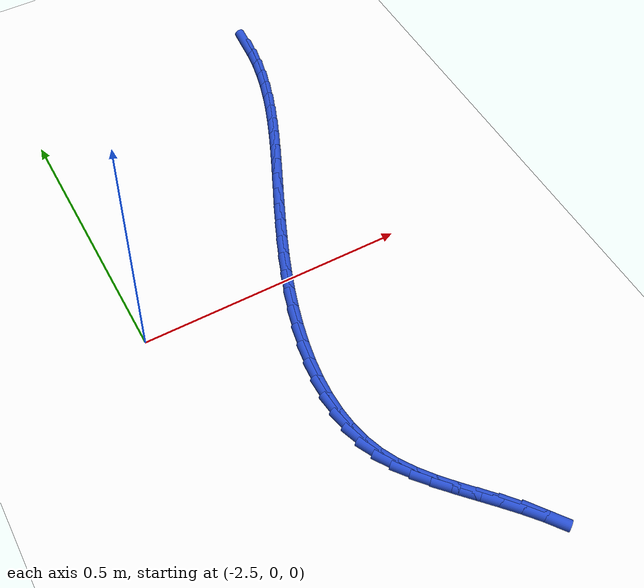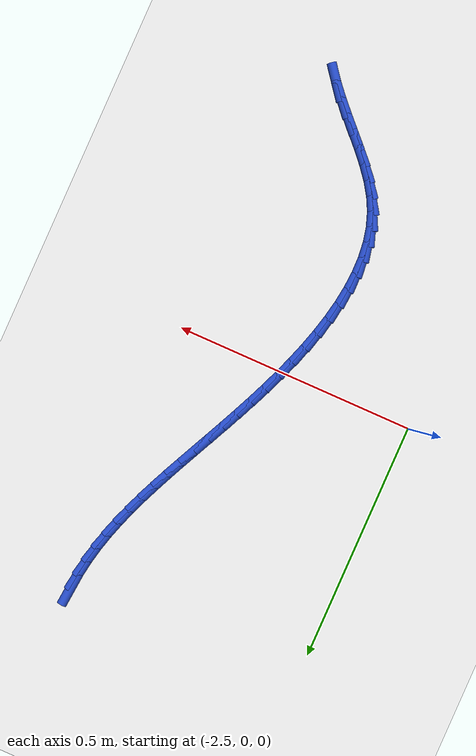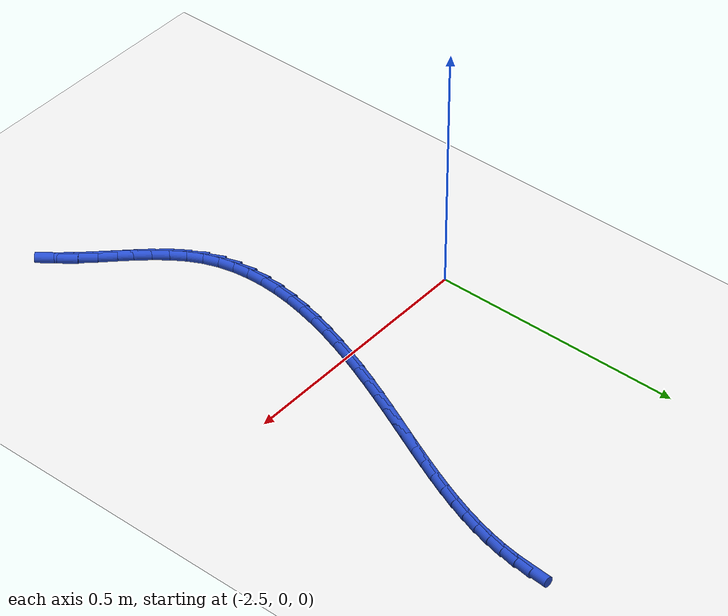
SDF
<sdf version="1.6">
 <world name="default">
  <model name="ground_plane">
   <static>1</static>
   <link name="link">
    <collision name="collision">
     <geometry><plane><normal>0 0 1</normal><size>100 100</size></plane></geometry>
     <surface><friction><ode><mu>100</mu><mu2>50</mu2></ode></friction></surface>
    </collision>
    <visual name="visual">
     <cast_shadows>0</cast_shadows>
     <geometry><plane><normal>0 0 1</normal><size>100 100</size></plane></geometry>
     <material>
      <script><uri>file://media/materials/scripts/gazebo.material</uri><name>Gazebo/WhiteGlow</name></script>
     </material>
    </visual>
   </link>
  </model>
  <model name="line">
   <link name="link_92">
    <pose>-2.0093848968466035 0.5658518400593916 0.01 0 1.57 1.4824789816407173</pose>
    <collision name="collision">
     <geometry><cylinder><radius>0.01</radius><length>0.08</length></cylinder></geometry>
    </collision>
    <visual name="visual">
     <material>
      <script><name>Gazebo/Blue</name><uri>file://media/materials/scripts/gazebo.material</uri></script>
     </material>
     <geometry><cylinder><radius>0.01</radius><length>0.08</length></cylinder></geometry>
    </visual>
   </link>
   <link name="link_93">
    <pose>-2.0122258928136243 0.533767479135707 0.01 0 1.57 1.4169712733001767</pose>
    <collision name="collision">
     <geometry><cylinder><radius>0.01</radius><length>0.08</length></cylinder></geometry>
    </collision>
    <visual name="visual">
     <material>
      <script><name>Gazebo/Blue</name><uri>file://media/materials/scripts/gazebo.material</uri></script>
     </material>
     <geometry><cylinder><radius>0.01</radius><length>0.08</length></cylinder></geometry>
    </visual>
   </link>
   <link name="link_94">
    <pose>-2.017181020840848 0.5018092048859754 0.01 0 1.57 1.3581400884400106</pose>
    <collision name="collision">
     <geometry><cylinder><radius>0.01</radius><length>0.08</length></cylinder></geometry>
    </collision>
    <visual name="visual">
     <material>
      <script><name>Gazebo/Blue</name><uri>file://media/materials/scripts/gazebo.material</uri></script>
     </material>
     <geometry><cylinder><radius>0.01</radius><length>0.08</length></cylinder></geometry>
    </visual>
   </link>
   <link name="link_95">
    <pose>-2.0240638263364565 0.46993269641707225 0.01 0 1.57 1.3062801853710033</pose>
    <collision name="collision">
     <geometry><cylinder><radius>0.01</radius><length>0.08</length></cylinder></geometry>
    </collision>
    <visual name="visual">
     <material>
      <script><name>Gazebo/Blue</name><uri>file://media/materials/scripts/gazebo.material</uri></script>
     </material>
     <geometry><cylinder><radius>0.01</radius><length>0.08</length></cylinder></geometry>
    </visual>
   </link>
   <link name="link_96">
    <pose>-2.032687854708631 0.43809363283587527 0.01 0 1.57 1.2614324973690432</pose>
    <collision name="collision">
     <geometry><cylinder><radius>0.01</radius><length>0.08</length></cylinder></geometry>
    </collision>
    <visual name="visual">
     <material>
      <script><name>Gazebo/Blue</name><uri>file://media/materials/scripts/gazebo.material</uri></script>
     </material>
     <geometry><cylinder><radius>0.01</radius><length>0.08</length></cylinder></geometry>
    </visual>
   </link>
   <link name="link_97">
    <pose>-2.0428666513655545 0.4062476932492604 0.01 0 1.57 1.2234617209630918</pose>
    <collision name="collision">
     <geometry><cylinder><radius>0.01</radius><length>0.08</length></cylinder></geometry>
    </collision>
    <visual name="visual">
     <material>
      <script><name>Gazebo/Blue</name><uri>file://media/materials/scripts/gazebo.material</uri></script>
     </material>
     <geometry><cylinder><radius>0.01</radius><length>0.08</length></cylinder></geometry>
    </visual>
   </link>
   <link name="link_98">
    <pose>-2.054413761715407 0.3743505567641042 0.01 0 1.57 1.1921260983931963</pose>
    <collision name="collision">
     <geometry><cylinder><radius>0.01</radius><length>0.08</length></cylinder></geometry>
    </collision>
    <visual name="visual">
     <material>
      <script><name>Gazebo/Blue</name><uri>file://media/materials/scripts/gazebo.material</uri></script>
     </material>
     <geometry><cylinder><radius>0.01</radius><length>0.08</length></cylinder></geometry>
    </visual>
   </link>
   <link name="link_99">
    <pose>-2.067142731166373 0.3423579024872838 0.01 0 1.57 1.1671328768317546</pose>
    <collision name="collision">
     <geometry><cylinder><radius>0.01</radius><length>0.08</length></cylinder></geometry>
    </collision>
    <visual name="visual">
     <material>
      <script><name>Gazebo/Blue</name><uri>file://media/materials/scripts/gazebo.material</uri></script>
     </material>
     <geometry><cylinder><radius>0.01</radius><length>0.08</length></cylinder></geometry>
    </visual>
   </link>
   <link name="link_100">
    <pose>-2.080867105126631 0.310225409525675 0.01 0 1.57 1.1481783902617893</pose>
    <collision name="collision">
     <geometry><cylinder><radius>0.01</radius><length>0.08</length></cylinder></geometry>
    </collision>
    <visual name="visual">
     <material>
      <script><name>Gazebo/Blue</name><uri>file://media/materials/scripts/gazebo.material</uri></script>
     </material>
     <geometry><cylinder><radius>0.01</radius><length>0.08</length></cylinder></geometry>
    </visual>
   </link>
   <link name="link_101">
    <pose>-2.095400429004365 0.27790875698615536 0.01 0 1.57 1.1349746001147343</pose>
    <collision name="collision">
     <geometry><cylinder><radius>0.01</radius><length>0.08</length></cylinder></geometry>
    </collision>
    <visual name="visual">
     <material>
      <script><name>Gazebo/Blue</name><uri>file://media/materials/scripts/gazebo.material</uri></script>
     </material>
     <geometry><cylinder><radius>0.01</radius><length>0.08</length></cylinder></geometry>
    </visual>
   </link>
   <link name="link_102">
    <pose>-2.110556248207757 0.2453636239756007 0.01 0 1.57 1.1272649279348275</pose>
    <collision name="collision">
     <geometry><cylinder><radius>0.01</radius><length>0.08</length></cylinder></geometry>
    </collision>
    <visual name="visual">
     <material>
      <script><name>Gazebo/Blue</name><uri>file://media/materials/scripts/gazebo.material</uri></script>
     </material>
     <geometry><cylinder><radius>0.01</radius><length>0.08</length></cylinder></geometry>
    </visual>
   </link>
   <link name="link_103">
    <pose>-2.1261481081449882 0.21254568960088824 0.01 0 1.57 1.124832136747564</pose>
    <collision name="collision">
     <geometry><cylinder><radius>0.01</radius><length>0.08</length></cylinder></geometry>
    </collision>
    <visual name="visual">
     <material>
      <script><name>Gazebo/Blue</name><uri>file://media/materials/scripts/gazebo.material</uri></script>
     </material>
     <geometry><cylinder><radius>0.01</radius><length>0.08</length></cylinder></geometry>
    </visual>
   </link>
   <link name="link_104">
    <pose>-2.141989554224241 0.17941063296889398 0.01 0 1.57 1.1275004772957944</pose>
    <collision name="collision">
     <geometry><cylinder><radius>0.01</radius><length>0.08</length></cylinder></geometry>
    </collision>
    <visual name="visual">
     <material>
      <script><name>Gazebo/Blue</name><uri>file://media/materials/scripts/gazebo.material</uri></script>
     </material>
     <geometry><cylinder><radius>0.01</radius><length>0.08</length></cylinder></geometry>
    </visual>
   </link>
   <link name="link_105">
    <pose>-2.157894131853696 0.1459141331864952 0.01 0 1.57 1.1351336663941438</pose>
    <collision name="collision">
     <geometry><cylinder><radius>0.01</radius><length>0.08</length></cylinder></geometry>
    </collision>
    <visual name="visual">
     <material>
      <script><name>Gazebo/Blue</name><uri>file://media/materials/scripts/gazebo.material</uri></script>
     </material>
     <geometry><cylinder><radius>0.01</radius><length>0.08</length></cylinder></geometry>
    </visual>
   </link>
   <link name="link_106">
    <pose>-2.173675386441536 0.11201186936056774 0.01 0 1.57 1.147629677365347</pose>
    <collision name="collision">
     <geometry><cylinder><radius>0.01</radius><length>0.08</length></cylinder></geometry>
    </collision>
    <visual name="visual">
     <material>
      <script><name>Gazebo/Blue</name><uri>file://media/materials/scripts/gazebo.material</uri></script>
     </material>
     <geometry><cylinder><radius>0.01</radius><length>0.08</length></cylinder></geometry>
    </visual>
   </link>
   <link name="link_107">
    <pose>-2.189146863395943 0.07765952059798913 0.01 0 1.57 1.1649128623312017</pose>
    <collision name="collision">
     <geometry><cylinder><radius>0.01</radius><length>0.08</length></cylinder></geometry>
    </collision>
    <visual name="visual">
     <material>
      <script><name>Gazebo/Blue</name><uri>file://media/materials/scripts/gazebo.material</uri></script>
     </material>
     <geometry><cylinder><radius>0.01</radius><length>0.08</length></cylinder></geometry>
    </visual>
   </link>
   <link name="link_108">
    <pose>-2.2041221081250986 0.042812766005634995 0.01 0 1.57 1.1869134895911022</pose>
    <collision name="collision">
     <geometry><cylinder><radius>0.01</radius><length>0.08</length></cylinder></geometry>
    </collision>
    <visual name="visual">
     <material>
      <script><name>Gazebo/Blue</name><uri>file://media/materials/scripts/gazebo.material</uri></script>
     </material>
     <geometry><cylinder><radius>0.01</radius><length>0.08</length></cylinder></geometry>
    </visual>
   </link>
   <link name="link_109">
    <pose>-2.2184120669966134 0.007434750762351223 0.01 0 1.57 1.2135156121120843</pose>
    <collision name="collision">
     <geometry><cylinder><radius>0.01</radius><length>0.08</length></cylinder></geometry>
    </collision>
    <visual name="visual">
     <material>
      <script><name>Gazebo/Blue</name><uri>file://media/materials/scripts/gazebo.material</uri></script>
     </material>
     <geometry><cylinder><radius>0.01</radius><length>0.08</length></cylinder></geometry>
    </visual>
   </link>
   <link name="link_110">
    <pose>-2.231784511344768 -0.02838735422227126 0.01 0 1.57 1.245021894493551</pose>
    <collision name="collision">
     <geometry><cylinder><radius>0.01</radius><length>0.08</length></cylinder></geometry>
    </collision>
    <visual name="visual">
     <material>
      <script><name>Gazebo/Blue</name><uri>file://media/materials/scripts/gazebo.material</uri></script>
     </material>
     <geometry><cylinder><radius>0.01</radius><length>0.08</length></cylinder></geometry>
    </visual>
   </link>
   <link name="link_111">
    <pose>-2.2439716382363324 -0.06446418646671652 0.01 0 1.57 1.2821038017310378</pose>
    <collision name="collision">
     <geometry><cylinder><radius>0.01</radius><length>0.08</length></cylinder></geometry>
    </collision>
    <visual name="visual">
     <material>
      <script><name>Gazebo/Blue</name><uri>file://media/materials/scripts/gazebo.material</uri></script>
     </material>
     <geometry><cylinder><radius>0.01</radius><length>0.08</length></cylinder></geometry>
    </visual>
   </link>
   <link name="link_112">
    <pose>-2.2547045837412867 -0.10060333564232224 0.01 0 1.57 1.3256180834753217</pose>
    <collision name="collision">
     <geometry><cylinder><radius>0.01</radius><length>0.08</length></cylinder></geometry>
    </collision>
    <visual name="visual">
     <material>
      <script><name>Gazebo/Blue</name><uri>file://media/materials/scripts/gazebo.material</uri></script>
     </material>
     <geometry><cylinder><radius>0.01</radius><length>0.08</length></cylinder></geometry>
    </visual>
   </link>
   <link name="link_113">
    <pose>-2.2637144839296095 -0.13661239142042594 0.01 0 1.57 1.3766177681252625</pose>
    <collision name="collision">
     <geometry><cylinder><radius>0.01</radius><length>0.08</length></cylinder></geometry>
    </collision>
    <visual name="visual">
     <material>
      <script><name>Gazebo/Blue</name><uri>file://media/materials/scripts/gazebo.material</uri></script>
     </material>
     <geometry><cylinder><radius>0.01</radius><length>0.08</length></cylinder></geometry>
    </visual>
   </link>
   <link name="link_114">
    <pose>-2.2707324748712825 -0.17229894347236593 0.01 0 1.57 1.4363549973470064</pose>
    <collision name="collision">
     <geometry><cylinder><radius>0.01</radius><length>0.08</length></cylinder></geometry>
    </collision>
    <visual name="visual">
     <material>
      <script><name>Gazebo/Blue</name><uri>file://media/materials/scripts/gazebo.material</uri></script>
     </material>
     <geometry><cylinder><radius>0.01</radius><length>0.08</length></cylinder></geometry>
    </visual>
   </link>
   <link name="link_115">
    <pose>-2.2754896926362846 -0.20747058146947792 0.01 0 1.57 1.5062516952163376</pose>
    <collision name="collision">
     <geometry><cylinder><radius>0.01</radius><length>0.08</length></cylinder></geometry>
    </collision>
    <visual name="visual">
     <material>
      <script><name>Gazebo/Blue</name><uri>file://media/materials/scripts/gazebo.material</uri></script>
     </material>
     <geometry><cylinder><radius>0.01</radius><length>0.08</length></cylinder></geometry>
    </visual>
   </link>
   <link name="link_116">
    <pose>-2.277717273294596 -0.24193489508310018 0.01 0 1.57 -1.5537883575075948</pose>
    <collision name="collision">
     <geometry><cylinder><radius>0.01</radius><length>0.08</length></cylinder></geometry>
    </collision>
    <visual name="visual">
     <material>
      <script><name>Gazebo/Blue</name><uri>file://media/materials/scripts/gazebo.material</uri></script>
     </material>
     <geometry><cylinder><radius>0.01</radius><length>0.08</length></cylinder></geometry>
    </visual>
   </link>
   <link name="link_117">
    <pose>-2.277146352916197 -0.2754994739845701 0.01 0 1.57 -1.459219392234403</pose>
    <collision name="collision">
     <geometry><cylinder><radius>0.01</radius><length>0.08</length></cylinder></geometry>
    </collision>
    <visual name="visual">
     <material>
      <script><name>Gazebo/Blue</name><uri>file://media/materials/scripts/gazebo.material</uri></script>
     </material>
     <geometry><cylinder><radius>0.01</radius><length>0.08</length></cylinder></geometry>
    </visual>
   </link>
   <link name="link_118">
    <pose>-2.273508067571066 -0.307971907845226 0.01 0 1.57 -1.3507871995287097</pose>
    <collision name="collision">
     <geometry><cylinder><radius>0.01</radius><length>0.08</length></cylinder></geometry>
    </collision>
    <visual name="visual">
     <material>
      <script><name>Gazebo/Blue</name><uri>file://media/materials/scripts/gazebo.material</uri></script>
     </material>
     <geometry><cylinder><radius>0.01</radius><length>0.08</length></cylinder></geometry>
    </visual>
   </link>
   <link name="link_119">
    <pose>-2.2665335533291846 -0.33915978633640365 0.01 0 1.57 -1.2287109895743242</pose>
    <collision name="collision">
     <geometry><cylinder><radius>0.01</radius><length>0.08</length></cylinder></geometry>
    </collision>
    <visual name="visual">
     <material>
      <script><name>Gazebo/Blue</name><uri>file://media/materials/scripts/gazebo.material</uri></script>
     </material>
     <geometry><cylinder><radius>0.01</radius><length>0.08</length></cylinder></geometry>
    </visual>
   </link>
   <link name="link_120">
    <pose>-2.255953946260532 -0.3688706991294412 0.01 0 1.57 -1.0971829597974208</pose>
    <collision name="collision">
     <geometry><cylinder><radius>0.01</radius><length>0.08</length></cylinder></geometry>
    </collision>
    <visual name="visual">
     <material>
      <script><name>Gazebo/Blue</name><uri>file://media/materials/scripts/gazebo.material</uri></script>
     </material>
     <geometry><cylinder><radius>0.01</radius><length>0.08</length></cylinder></geometry>
    </visual>
   </link>
   <link name="link_121">
    <pose>-2.241562299373468 -0.39695086566757554 0.01 0 1.57 -0.9816011724233548</pose>
    <collision name="collision">
     <geometry><cylinder><radius>0.01</radius><length>0.08</length></cylinder></geometry>
    </collision>
    <visual name="visual">
     <material>
      <script><name>Gazebo/Blue</name><uri>file://media/materials/scripts/gazebo.material</uri></script>
     </material>
     <geometry><cylinder><radius>0.01</radius><length>0.08</length></cylinder></geometry>
    </visual>
   </link>
   <link name="link_122">
    <pose>-2.2237408477832803 -0.4236140941507466 0.01 0 1.57 -0.8957678201313942</pose>
    <collision name="collision">
     <geometry><cylinder><radius>0.01</radius><length>0.08</length></cylinder></geometry>
    </collision>
    <visual name="visual">
     <material>
      <script><name>Gazebo/Blue</name><uri>file://media/materials/scripts/gazebo.material</uri></script>
     </material>
     <geometry><cylinder><radius>0.01</radius><length>0.08</length></cylinder></geometry>
    </visual>
   </link>
   <link name="link_123">
    <pose>-2.2031979094314247 -0.44927763476948046 0.01 0 1.57 -0.8384720929739129</pose>
    <collision name="collision">
     <geometry><cylinder><radius>0.01</radius><length>0.08</length></cylinder></geometry>
    </collision>
    <visual name="visual">
     <material>
      <script><name>Gazebo/Blue</name><uri>file://media/materials/scripts/gazebo.material</uri></script>
     </material>
     <geometry><cylinder><radius>0.01</radius><length>0.08</length></cylinder></geometry>
    </visual>
   </link>
   <link name="link_124">
    <pose>-2.180645254327777 -0.4743608914483102 0.01 0 1.57 -0.8073693938623273</pose>
    <collision name="collision">
     <geometry><cylinder><radius>0.01</radius><length>0.08</length></cylinder></geometry>
    </collision>
    <visual name="visual">
     <material>
      <script><name>Gazebo/Blue</name><uri>file://media/materials/scripts/gazebo.material</uri></script>
     </material>
     <geometry><cylinder><radius>0.01</radius><length>0.08</length></cylinder></geometry>
    </visual>
   </link>
   <link name="link_125">
    <pose>-2.1567946524822106 -0.49928326811176804 0.01 0 1.57 -0.8003941532866086</pose>
    <collision name="collision">
     <geometry><cylinder><radius>0.01</radius><length>0.08</length></cylinder></geometry>
    </collision>
    <visual name="visual">
     <material>
      <script><name>Gazebo/Blue</name><uri>file://media/materials/scripts/gazebo.material</uri></script>
     </material>
     <geometry><cylinder><radius>0.01</radius><length>0.08</length></cylinder></geometry>
    </visual>
   </link>
   <link name="link_126">
    <pose>-2.132357873904602 -0.5244641686843869 0.01 0 1.57 -0.8162363546067307</pose>
    <collision name="collision">
     <geometry><cylinder><radius>0.01</radius><length>0.08</length></cylinder></geometry>
    </collision>
    <visual name="visual">
     <material>
      <script><name>Gazebo/Blue</name><uri>file://media/materials/scripts/gazebo.material</uri></script>
     </material>
     <geometry><cylinder><radius>0.01</radius><length>0.08</length></cylinder></geometry>
    </visual>
   </link>
   <link name="link_127">
    <pose>-2.1080466886048264 -0.5503229970906983 0.01 0 1.57 -0.8543416535806362</pose>
    <collision name="collision">
     <geometry><cylinder><radius>0.01</radius><length>0.08</length></cylinder></geometry>
    </collision>
    <visual name="visual">
     <material>
      <script><name>Gazebo/Blue</name><uri>file://media/materials/scripts/gazebo.material</uri></script>
     </material>
     <geometry><cylinder><radius>0.01</radius><length>0.08</length></cylinder></geometry>
    </visual>
   </link>
   <link name="link_128">
    <pose>-2.0845728665927603 -0.577279157255235 0.01 0 1.57 -0.9146052857250573</pose>
    <collision name="collision">
     <geometry><cylinder><radius>0.01</radius><length>0.08</length></cylinder></geometry>
    </collision>
    <visual name="visual">
     <material>
      <script><name>Gazebo/Blue</name><uri>file://media/materials/scripts/gazebo.material</uri></script>
     </material>
     <geometry><cylinder><radius>0.01</radius><length>0.08</length></cylinder></geometry>
    </visual>
   </link>
  </model>
 </world>
</sdf>
